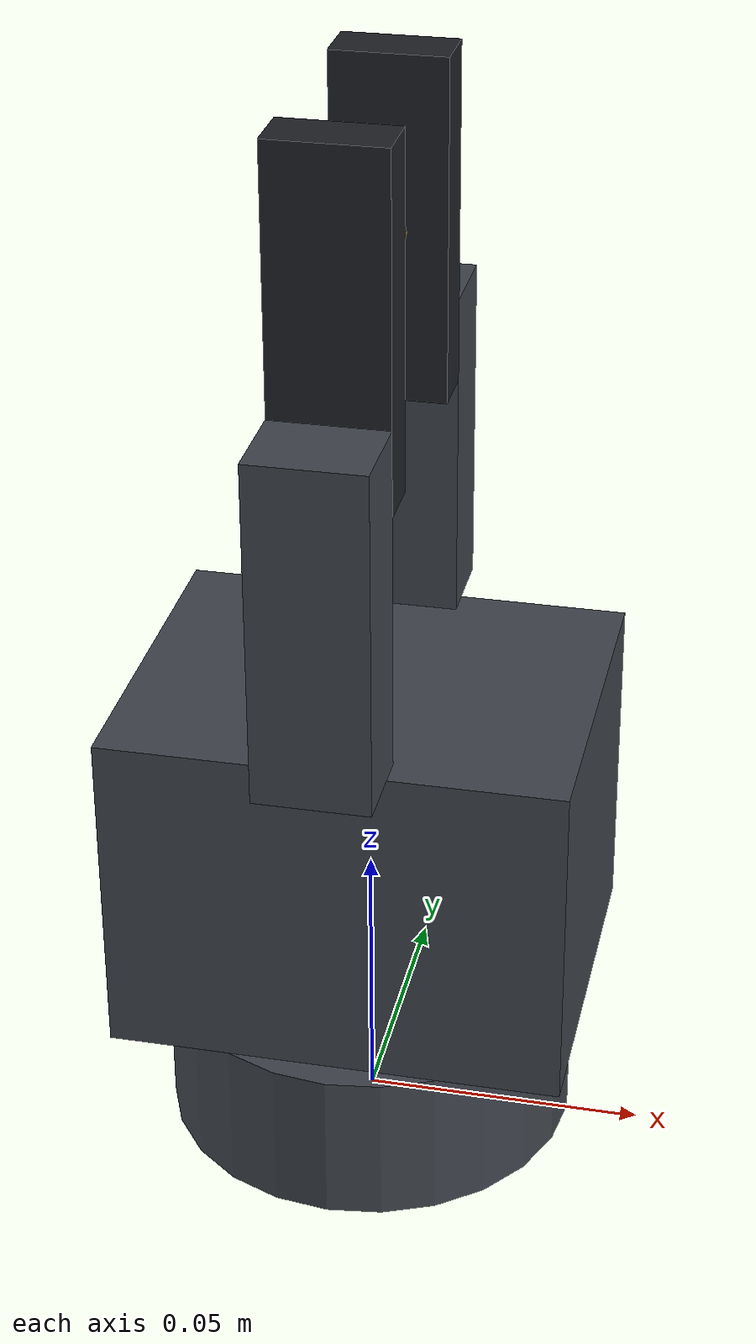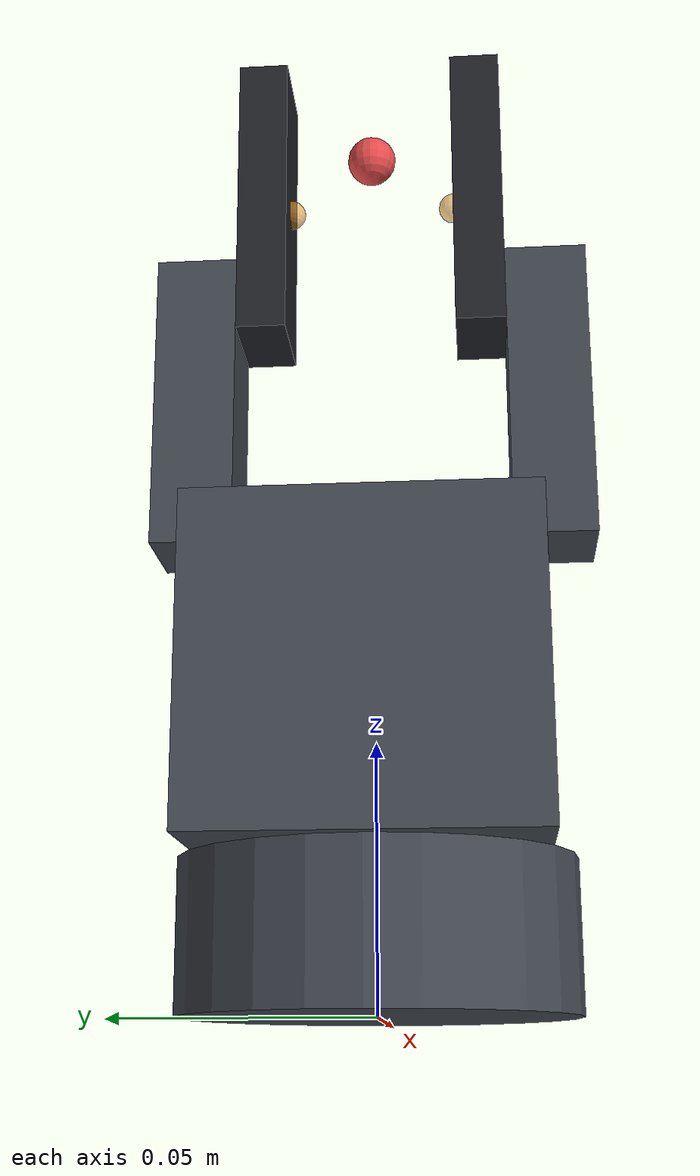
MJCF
<mujoco model="pinch_gripper">
  <compiler angle="radian" autolimits="true"/>

  <default>
    <default class="pinch">
      <geom condim="4" friction="1.0 0.05 0.001" solref="0.008 1" solimp="0.95 0.99 0.001"
            rgba="0.25 0.27 0.30 1"/>
      <joint type="slide" axis="0 1 0" damping="8" armature="0.02"/>
    </default>
  </default>

  <worldbody>
    <body name="gripper_base" childclass="pinch">
      <inertial pos="0 0 0.035" mass="0.9" diaginertia="0.0018 0.0018 0.0012"/>
      <geom name="coupler" type="cylinder" size="0.037 0.014" pos="0 0 0.014"/>
      <geom name="body_block" type="box" size="0.040 0.032 0.030" pos="0 0 0.058"/>

      <!-- Tool centre point: midway between the closed pads. -->
      <site name="tcp" pos="0 0 0.175" size="0.005" rgba="0.9 0.3 0.3 0.9"/>
      <site name="grasp_axis" pos="0 0 0.175" size="0.004" rgba="0.3 0.9 0.3 0.6"/>

      <body name="finger_left" pos="0 0.035 0.088">
        <joint name="finger_left_joint" range="0 0.070"/>
        <geom name="finger_left_arm" type="box" size="0.010 0.008 0.030" pos="0 0 0.030"/>
        <geom name="finger_left_pad" type="box" size="0.010 0.005 0.030" pos="0 -0.013 0.075"
              rgba="0.12 0.13 0.15 1"/>
        <site name="pad_left" pos="0 -0.018 0.075" size="0.003" rgba="0.9 0.6 0.2 0.6"/>
      </body>

      <body name="finger_right" pos="0 -0.035 0.088">
        <joint name="finger_right_joint" range="-0.070 0"/>
        <geom name="finger_right_arm" type="box" size="0.010 0.008 0.030" pos="0 0 0.030"/>
        <geom name="finger_right_pad" type="box" size="0.010 0.005 0.030" pos="0 0.013 0.075"
              rgba="0.12 0.13 0.15 1"/>
        <site name="pad_right" pos="0 0.018 0.075" size="0.003" rgba="0.9 0.6 0.2 0.6"/>
      </body>

      <camera name="wrist" pos="0 -0.075 0.060" quat="0.9239 0.3827 0 0" fovy="58"/>
    </body>
  </worldbody>

  <!-- One command opens and closes both fingers symmetrically. -->
  <equality>
    <joint name="finger_coupling" joint1="finger_left_joint" joint2="finger_right_joint"
           polycoef="0 -1 0 0 0"/>
  </equality>

  <actuator>
    <position name="grip" joint="finger_left_joint" kp="600" kv="20"
              ctrlrange="0 0.070" forcerange="-140 140"/>
  </actuator>

  <sensor>
    <jointpos name="grip_pos" joint="finger_left_joint"/>
    <force name="pad_left_force" site="pad_left"/>
    <force name="pad_right_force" site="pad_right"/>
  </sensor>
</mujoco>
